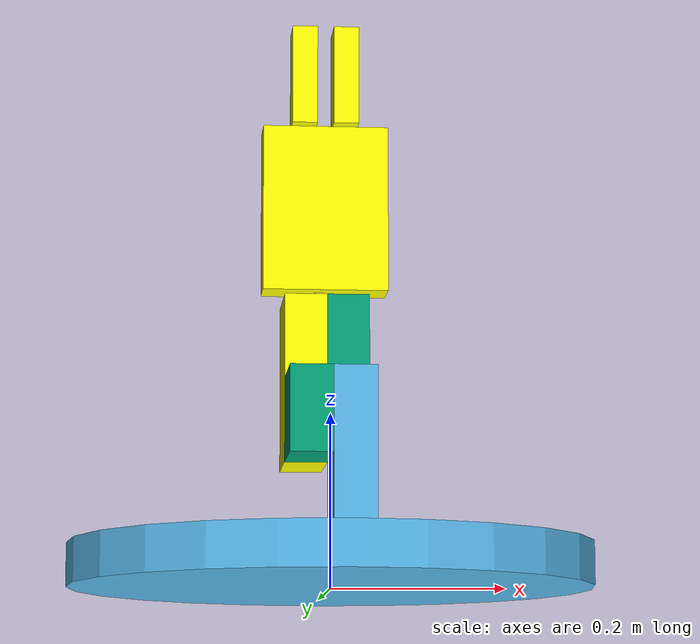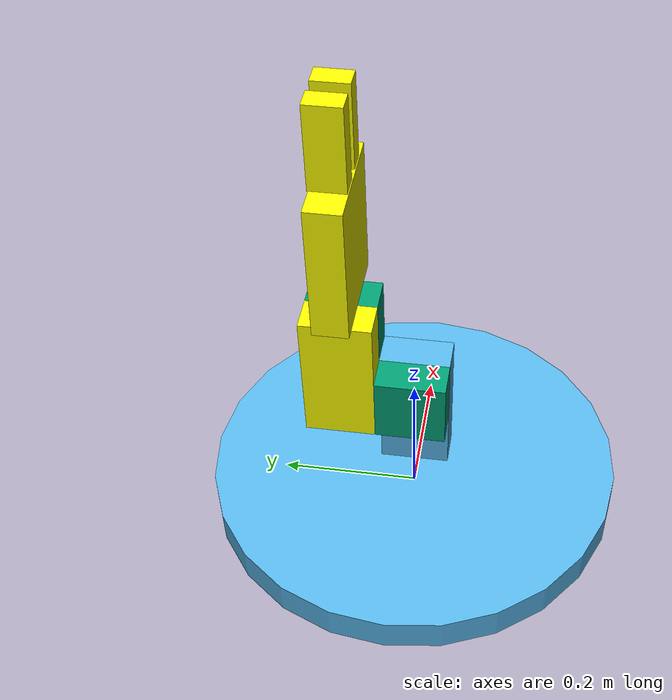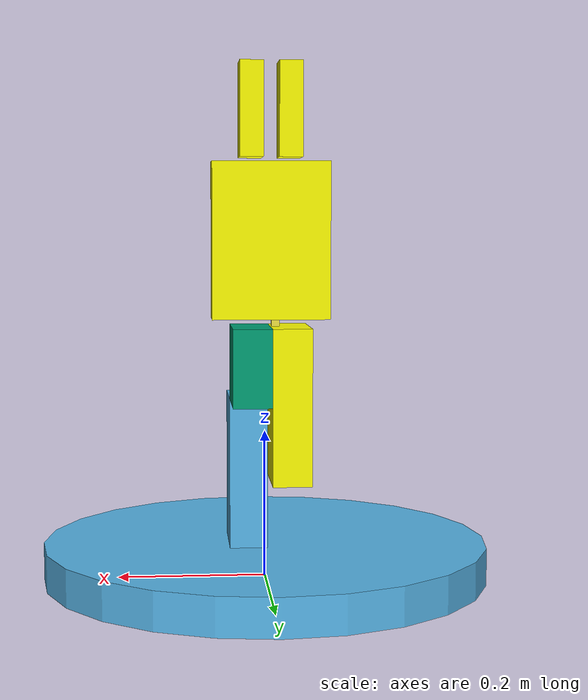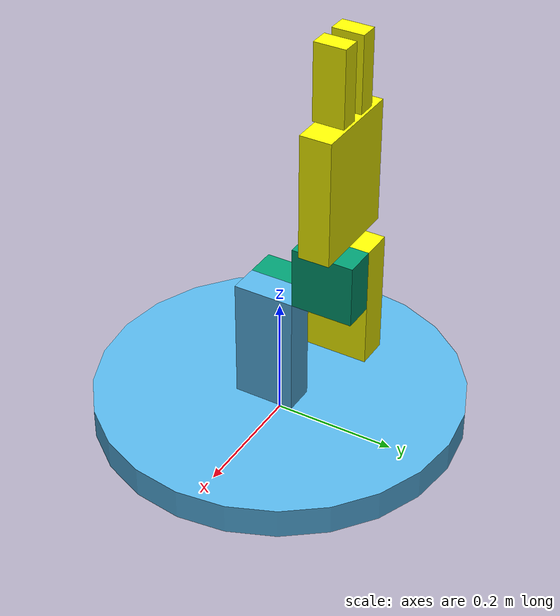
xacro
<?xml version="1.0" encoding="utf-8"?>

<robot xmlns:xacro="http://ros.org/wiki/xacro" name="full_model">

    <xacro:include filename="$(find macro_tutorial)/src/model/model.urdf.xacro"/>
    <xacro:include filename="$(find gripper_pkg)/urdf/grip.urdf.xacro"/>

    <xacro:rotating_base/>
    <xacro:gripper/>

    <joint name="attachment" type="revolute">
        <origin xyz="0.0 0.1 0.125" rpy="0.0 0.0 0.0"/>
        <parent link="inter_2"/>
        <child link="grip_body"/>
	<axis xyz="0 0 1"/>
        <limit effort="30" velocity="1.0" lower="-0.45" upper="0.45" />
    </joint>

</robot>

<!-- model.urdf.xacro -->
<robot xmlns:xacro="http://ros.org/wiki/xacro" name="skeleton">

  <xacro:macro name="rotating_base" >

    <link name="base_frame">
        <origin xyz="0.0 0.0 0.0" rpy="0.0 0.0 0.0"/>
    </link>

    <link name="base_link">
        <origin xyz="0.0 0.0 0.0" rpy="0.0 0.0 0.0"/>
        <visual>
        <origin rpy="0 0 0" xyz="0 0 0.025"/>
        <geometry>
            <cylinder length="0.05" radius="0.3"/>
        </geometry>
        </visual>
        <visual>
        <origin rpy="0 0 0" xyz="0.025 0 0.15"/>
        <geometry>
            <box size="0.05 0.1 0.2"/>
        </geometry>
        </visual>
        <collision>
        <geometry>
            <cylinder length="0.05" radius="0.025"/>
        <origin rpy="0 0 0" xyz="0 0 0"/>
        </geometry>
        </collision>
        <inertial>
        <mass value="0.1"/>
        <inertia ixx="0.067" ixy="0.0" ixz="0.0" iyy="0.067" iyz="0.0" izz="0.035"/>
        </inertial>

    </link>

    <joint name="mounting" type="fixed">
        <origin xyz="0.0 0.0 0.0" rpy="0.0 0.0 0.0"/>
        <parent link="base_frame"/>
        <child link="base_link"/>

    </joint>

    <link name="inter_1">
        <origin xyz="0.0 0.0 0.0" rpy="0.0 0.0 0.0"/>

        <visual>
        <origin rpy="0 0 0" xyz="-0.025 0.1 0"/>
        <geometry>
                <box size="0.05 0.1 0.2"/>
        </geometry>
        <material name="yellow">
            <color rgba="1 1 0 1"/>
        </material>
        </visual>

        <visual>
            <origin rpy="0 0 0" xyz="-0.0250 0 -0.05"/>
            <geometry>
                <box size="0.05 0.1 0.1"/>
            </geometry>
        </visual>

        <visual>
            <origin rpy="0 0 0" xyz="0.025 0.1 0.05"/>
            <geometry>
                <box size = "0.05 0.1 0.1"/>
            </geometry>
        </visual>
        <inertial>
            <mass value="0.1"/>
            <inertia ixx="0.067" ixy="0.0" ixz="0.0" iyy="0.067" iyz="0.0" izz="0.035"/>
        </inertial>
    </link>

	<link name="inter_2">
        <origin xyz="0.0 0.0 0.0" rpy="0.0 0.0 0.0"/>

        <visual>
        <origin rpy="0 0 0" xyz="-0.025 0.1 0"/>
        <geometry>
                <box size="0.01 0.01 0.01"/>
        </geometry>
        <material name="yellow">
            <color rgba="1 0 0 1"/>
        </material>
        </visual>

        <visual>
            <origin rpy="0 0 0" xyz="-0.0250 0 -0.05"/>
            <geometry>
                <box size="0.01 0.01 0.01"/>
            </geometry>
        </visual>

        <visual>
            <origin rpy="0 0 0" xyz="-0.0065 0.1 0.1"/>
            <geometry>
                <box size = "0.01 0.01 0.02"/>
            </geometry>
        </visual>
        <inertial>
            <mass value="0.1"/>
            <inertia ixx="0.067" ixy="0.0" ixz="0.0" iyy="0.067" iyz="0.0" izz="0.035"/>
        </inertial>
    </link>

    <joint name="rev_1" type="revolute">
        <origin xyz="0 0 0.25" rpy="0 0 0 "/>
        <parent link= "base_link"/>
        <child link = "inter_1"/>
        <axis xyz="1 0 0"/>
        <limit effort="30" velocity="1.0" lower="-0.45" upper="0.45" />
    </joint>

	<joint name="rev_2" type="revolute">
        <origin xyz="0 0 0.01" rpy="0 0 0 "/>
        <parent link= "inter_1"/>
        <child link = "inter_2"/>
        <axis xyz="0 1 0"/>
        <limit effort="30" velocity="1.0" lower="-0.45" upper="0.45" />
    </joint>

  </xacro:macro>

</robot>

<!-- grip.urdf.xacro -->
<robot xmlns:xacro="http://ros.org/wiki/xacro" name="grip">

    <xacro:macro name="gripper">

        <link name="grip_body">
            <visual>
                <origin rpy="0 0 0" xyz="0 0 0.075"/>
                <geometry>
                    <box size="0.15 0.05 0.2"/>
                </geometry>
                <material name="yellow">
                    <color rgba="1 1 0 1"/>
                </material>
            </visual>
            <inertial>
                <mass value="0.1"/>
                <inertia ixx="0.0067" ixy="0.0" ixz="0.0" iyy="0.0067" iyz="0.0" izz="0.0035"/>
            </inertial>
            <collision>
                <origin rpy="0 0 0" xyz="0 0 0.075"/>
                <geometry>
                    <box size="0.15 0.05 0.2"/>
                </geometry>
            </collision>
        </link>

        <link name="right_finger">
            <visual>
                <origin rpy="0 0 0" xyz="0.025 0 0.24"/>
                <geometry>
                    <box size="0.03 0.05 0.12"/>
                </geometry>
                <material name="yellow">
                    <color rgba="1 1 0 1"/>
                </material>

            </visual>
            <collision>
                <origin rpy="0 0 0" xyz="0.025 0 0.24"/>
                <geometry>
                    <box size="0.03 0.05 0.12"/>
                </geometry>
            </collision>
            <inertial>
                <mass value="0.1"/>
                <inertia ixx="0.0067" ixy="0.0" ixz="0.0" iyy="0.0067" iyz="0.0" izz="0.0035"/>
            </inertial>
        </link>

        <joint name="slide_right" type="prismatic">
            <origin xyz="0 0 0" rpy="0 0 0 "/>
            <parent link= "grip_body"/>
            <child link = "right_finger"/>
            <axis xyz="1 0 0"/>
            <limit effort="30" velocity="1.0" lower="0" upper="0.05" />
            <dynamics damping="0.0" friction="0.0"/>
        </joint>

        <link name="left_finger">
            <visual>
                <origin rpy="0 0 0" xyz="-0.025 0 0.24"/>
                <geometry>
                    <box size="0.03 0.05 0.12"/>
                </geometry>
                <material name="yellow">
                    <color rgba="1 1 0 1"/>
                </material>
            </visual>
            <inertial>
                <mass value="0.1"/>
                <inertia ixx="0.0067" ixy="0.0" ixz="0.0" iyy="0.0067" iyz="0.0" izz="0.0035"/>
            </inertial>

            <collision>
                <origin rpy="0 0 0" xyz="-0.025 0 0.24"/>
                <geometry>
                    <box size="0.03 0.05 0.12"/>
                </geometry>
            </collision>

        </link>

        <joint name="slide_left" type="prismatic">
            <origin xyz="0 0 0" rpy="0 0 0 "/>
            <parent link= "grip_body"/>
            <child link = "left_finger"/>
            <axis xyz="-1 0 0"/>
            <limit effort="30" velocity="1.0" lower="0" upper="0.05" />
            <dynamics damping="0.0" friction="0.0"/>
        </joint>

    </xacro:macro>

</robot>
